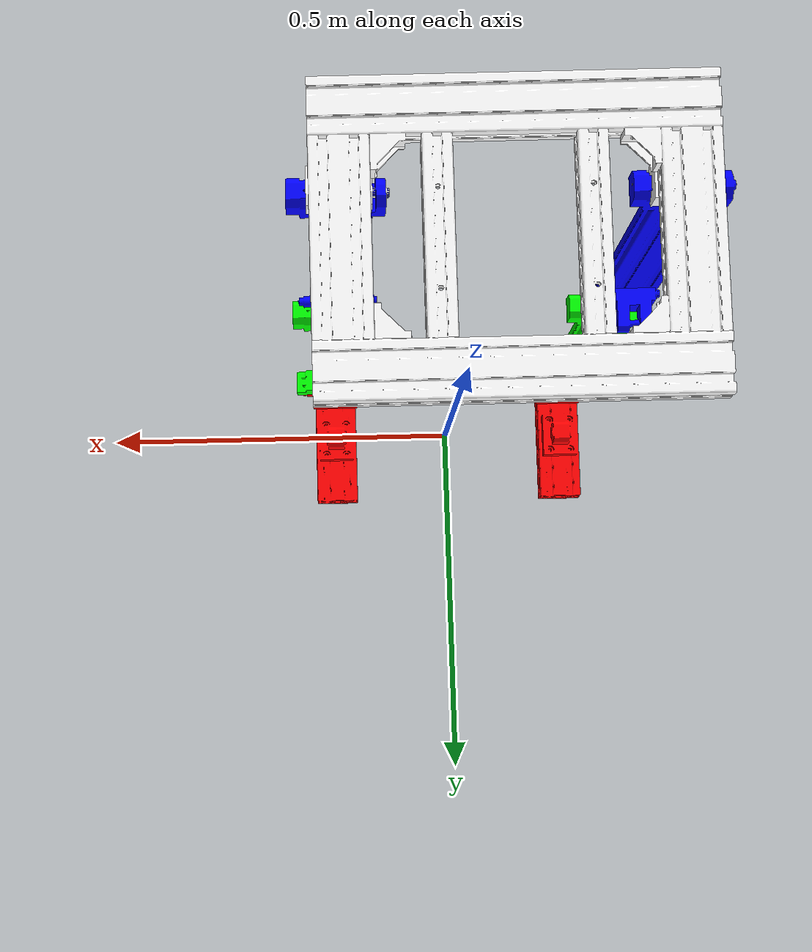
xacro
<?xml version="1.0" encoding="utf-8"?>
<robot
  name="hmr"
  xmlns:xacro="http://www.ros.org/wiki/xacro">

  <xacro:property name="PI" value="3.1415926535897931"/>
  <!-- Import Rviz colors -->
  <!-- Import all Gazebo-customization elements, including Gazebo colors -->
  <gazebo>
    <plugin name="gazebo_ros_control" filename="libgazebo_ros_control.so">
      <robotNamespace>/hmr</robotNamespace>
    </plugin>
  </gazebo>

  <link name="world"/>
  <joint name="fixed" type="fixed">
    <parent link="world"/>
    <child link="base"/>
  </joint>
  <link name="base">
  </link>
  <gazebo reference="base">
    <material>Gazebo/Blue</material>
  </gazebo>
  <!--BASE_LINK-->
  <link
    name="base_link">
    <inertial>
      <origin
        xyz="-0.000103296813793522 -0.0184749995894324 -0.00709986514009202"
        rpy="0 0 0" />
      <mass
        value="0.933836944447792" />
      <inertia
        ixx="0.00139201398308306"
        ixy="-2.82901658884336E-12"
        ixz="4.14929438991966E-12"
        iyy="0.00736197315629375"
        iyz="-8.0885885721078E-10"
        izz="0.00614175111526735" />
    </inertial>
    <visual>
      <origin
        xyz="0 0 0"
        rpy="0 0 0" />
      <geometry>
        <mesh
          filename="package://hmr/hmr_description/meshes/base_link.STL" />
      </geometry>
      <material name="white">
        <color rgba="1.0 1.0 1.0 1.0"/>
      </material>
    </visual>
    <collision>
      <origin
        xyz="0 0 0"
        rpy="0 0 0" />
      <geometry>
        <mesh
          filename="package://hmr/hmr_description/meshes/base_link.STL" />
      </geometry>
    </collision>
  </link>
  <gazebo reference="base_link">
    <material>Gazebo/Blue</material>
  </gazebo>
  <joint name="joint" type="fixed">
    <parent link="base"/>
    <child link="base_link"/>
    <origin xyz="0.0 0.0 1.12 " rpy="0.0 0.0 3.1416"/>
  </joint>
  <!--LLINK1-->
  <link
    name="llink1">
    <inertial>
      <origin
        xyz="0.0499999851262689 -0.248500614775013 5.33671345059814E-05"
        rpy="0 0 0" />
      <mass
        value="0.509664464543895" />
      <inertia
        ixx="0.00405279295169879"
        ixy="-5.17821013423379E-16"
        ixz="-1.86028405386162E-17"
        iyy="0.000257140430774596"
        iyz="2.20410095949559E-06"
        izz="0.0041884713527824" />
    </inertial>
    <visual>
      <origin
        xyz="0 0 0"
        rpy="0 0 0" />
      <geometry>
        <mesh
          filename="package://hmr/hmr_description/meshes/llink1.STL" />
      </geometry>
      <material name="blue">
        <color rgba="0.0 0.0 1.0 1.0"/>
      </material>
    </visual>
    <collision>
      <origin
        xyz="0 0 0"
        rpy="0 0 0" />
      <geometry>
        <mesh
          filename="package://hmr/hmr_description/meshes/llink1.STL" />
      </geometry>
    </collision>
  </link>
  <gazebo reference="llink1">
    <material>Gazebo/Blue</material>
  </gazebo>
  <joint
    name="ljoint1"
    type="revolute">
    <origin
      xyz="0.12 0.06 -0.06"
      rpy="1.5708 0 0" />
    <parent
      link="base_link" />
    <child
      link="llink1" />
    <axis
      xyz="1 0 0" />
    <limit lower="-0.6981" upper="0.5236" effort="2.0" velocity="0.2"/>
  </joint>
  <!--LLINK2-->
  <link
    name="llink2">
    <inertial>
      <origin
        xyz="0.0500545282509017 -0.234393633663144 0.00550026352716933"
        rpy="0 0 0" />
      <mass
        value="0.442265777754145" />
      <inertia
        ixx="0.0040117979862963"
        ixy="-5.09697896497051E-16"
        ixz="-2.77164071387431E-17"
        iyy="0.000241596436981563"
        iyz="-1.10278899850188E-06"
        izz="0.00416183117175302" />
    </inertial>
    <visual>
      <origin
        xyz="0 0 0"
        rpy="0 0 0" />
      <geometry>
        <mesh
          filename="package://hmr/hmr_description/meshes/llink2.STL" />
      </geometry>
      <material name="green">
        <color rgba="0.0 1.0 0.0 1.0"/>
      </material>
    </visual>
    <collision>
      <origin
        xyz="0 0 0"
        rpy="0 0 0" />
      <geometry>
        <mesh
          filename="package://hmr/hmr_description/meshes/llink2.STL" />
      </geometry>
    </collision>
  </link>
  <gazebo reference="llink2">
    <material>Gazebo/Blue</material>
  </gazebo>
  <joint
    name="ljoint2"
    type="revolute">
    <origin
      xyz="0 -0.5 0"
      rpy="0 0 0" />
    <parent
      link="llink1" />
    <child
      link="llink2" />
    <axis
      xyz="1 0 0" />
    <limit lower="0.0" upper="1.0472" effort="2.0" velocity="0.2"/>
  </joint>
  <!--LLINK3-->
  <link
    name="llink3">
    <inertial>
      <origin
        xyz="0.0501466994062446 -0.0351041894822217 0.0405185729509365"
        rpy="0 0 0" />
      <mass
        value="0.164387087553345" />
      <inertia
        ixx="0.000390399624612182"
        ixy="6.46553823154572E-18"
        ixz="7.16521493881578E-17"
        iyy="0.000442516689346383"
        iyz="-8.18654011913839E-11"
        izz="8.27552994226968E-05" />
    </inertial>
    <visual>
      <origin
        xyz="0 0 0"
        rpy="0 0 0" />
      <geometry>
        <mesh
          filename="package://hmr/hmr_description/meshes/llink3.STL" />
      </geometry>
      <material name="red">
        <color rgba="1.0 0.0 0.0 1.0"/>
      </material>
    </visual>
    <collision>
      <origin
        xyz="0 0 0"
        rpy="0 0 0" />
      <geometry>
        <mesh
          filename="package://hmr/hmr_description/meshes/llink3.STL" />
      </geometry>
    </collision>
  </link>
  <gazebo reference="llink3">
    <material>Gazebo/Blue</material>
  </gazebo>
  <joint
    name="ljoint3"
    type="revolute">
    <origin
      xyz="0 -0.5 0"
      rpy="0 0 0" />
    <parent
      link="llink2" />
    <child
      link="llink3" />
    <axis
      xyz="1 0 0" />
    <limit lower="-0.5236" upper="0.8727" effort="2.0" velocity="0.2"/>
  </joint>
  <!--RLINK1-->
  <link
    name="rlink1">
    <inertial>
      <origin
        xyz="-0.0500000148736693 -0.248500614774999 5.33671345059189E-05"
        rpy="0 0 0" />
      <mass
        value="0.509664464543895" />
      <inertia
        ixx="0.00405279295169879"
        ixy="-5.17781100332924E-16"
        ixz="-1.86069004433025E-17"
        iyy="0.000257140430774596"
        iyz="2.20410095949557E-06"
        izz="0.0041884713527824" />
    </inertial>
    <visual>
      <origin
        xyz="0 0 0"
        rpy="0 0 0" />
      <geometry>
        <mesh
          filename="package://hmr/hmr_description/meshes/rlink1.STL" />
      </geometry>
      <material name="blue">
        <color rgba="0.0 0.0 1.0 1.0"/>
      </material>
    </visual>
    <collision>
      <origin
        xyz="0 0 0"
        rpy="0 0 0" />
      <geometry>
        <mesh
          filename="package://hmr/hmr_description/meshes/rlink1.STL" />
      </geometry>
    </collision>
  </link>
  <gazebo reference="rlink1">
    <material>Gazebo/Blue</material>
  </gazebo>
  <joint
    name="rjoint1"
    type="revolute">
    <origin
      xyz="-0.12 0.06 -0.06"
      rpy="1.5708 0 0" />
    <parent
      link="base_link" />
    <child
      link="rlink1" />
    <axis
      xyz="1 0 0" />
    <limit lower="-0.6981" upper="0.5236" effort="2.0" velocity="0.2"/>
  </joint>
  <!--RLINK2-->
  <link
    name="rlink2">
    <inertial>
      <origin
        xyz="-0.049945471749016 -0.234393633663131 0.00550026352714499"
        rpy="0 0 0" />
      <mass
        value="0.442265777754145" />
      <inertia
        ixx="0.00401179798629629"
        ixy="-5.09803878440693E-16"
        ixz="-2.77168469663556E-17"
        iyy="0.000241596436981563"
        iyz="-1.10278899850179E-06"
        izz="0.00416183117175302" />
    </inertial>
    <visual>
      <origin
        xyz="0 0 0"
        rpy="0 0 0" />
      <geometry>
        <mesh
          filename="package://hmr/hmr_description/meshes/rlink2.STL" />
      </geometry>
      <material name="green">
        <color rgba="0.0 1.0 0.0 1.0"/>
      </material>
    </visual>
    <collision>
      <origin
        xyz="0 0 0"
        rpy="0 0 0" />
      <geometry>
        <mesh
          filename="package://hmr/hmr_description/meshes/rlink2.STL" />
      </geometry>
    </collision>
  </link>
  <gazebo reference="rlink2">
    <material>Gazebo/Blue</material>
  </gazebo>
  <joint
    name="rjoint2"
    type="revolute">
    <origin
      xyz="0 -0.5 0"
      rpy="0 0 0" />
    <parent
      link="rlink1" />
    <child
      link="rlink2" />
    <axis
      xyz="1 0 0" />
    <limit lower="0.0" upper="1.0472" effort="2.0" velocity="0.2"/>
  </joint>
  <!--RLINK3-->
  <link
    name="rlink3">
    <inertial>
      <origin
        xyz="-0.0498532993324217 -0.0351041894822506 0.040518572950845"
        rpy="0 0 0" />
      <mass
        value="0.164387087553345" />
      <inertia
        ixx="0.000390399624612182"
        ixy="6.46331811347987E-18"
        ixz="7.16490435411506E-17"
        iyy="0.000442516689346383"
        iyz="-8.18654011935542E-11"
        izz="8.27552994226968E-05" />
    </inertial>
    <visual>
      <origin
        xyz="0 0 0"
        rpy="0 0 0" />
      <geometry>
        <mesh
          filename="package://hmr/hmr_description/meshes/rlink3.STL" />
      </geometry>
      <material name="red">
        <color rgba="1.0 0.0 0.0 1.0"/>
      </material>
    </visual>
    <collision>
      <origin
        xyz="0 0 0"
        rpy="0 0 0" />
      <geometry>
        <mesh
          filename="package://hmr/hmr_description/meshes/rlink3.STL" />
      </geometry>
    </collision>
  </link>
  <gazebo reference="rlink3">
    <material>Gazebo/Blue</material>
  </gazebo>
  <joint
    name="rjoint3"
    type="revolute">
    <origin
      xyz="0 -0.5 0"
      rpy="0 0 0" />
    <parent
      link="rlink2" />
    <child
      link="rlink3" />
    <axis
      xyz="1 0 0" />
    <limit lower="-0.5236" upper="0.8727" effort="2.0" velocity="0.2"/>
  </joint>

  <transmission name="ltran1">
    <type>transmission_interface/SimpleTransmission</type>
    <joint name="ljoint1">
      <hardwareInterface>hardware_interface/EffortJointInterface</hardwareInterface>
    </joint>
    <actuator name="lmotor1">
      <mechanicalReduction>1.0</mechanicalReduction>
      <hardwareInterface>hardware_interface/PositionJointInterface</hardwareInterface>
    </actuator>
  </transmission>

  <transmission name="ltran2">
    <type>transmission_interface/SimpleTransmission</type>
    <joint name="ljoint2">
      <hardwareInterface>hardware_interface/EffortJointInterface</hardwareInterface>
    </joint>
    <actuator name="lmotor2">
      <mechanicalReduction>1.0</mechanicalReduction>
      <hardwareInterface>hardware_interface/PositionJointInterface</hardwareInterface>
    </actuator>
  </transmission>

  <transmission name="ltran3">
    <type>transmission_interface/SimpleTransmission</type>
    <joint name="ljoint3">
      <hardwareInterface>hardware_interface/EffortJointInterface</hardwareInterface>
    </joint>
    <actuator name="lmotor3">
      <mechanicalReduction>1.0</mechanicalReduction>
      <hardwareInterface>hardware_interface/PositionJointInterface</hardwareInterface>
    </actuator>
  </transmission>

  <transmission name="rtran1">
    <type>transmission_interface/SimpleTransmission</type>
    <joint name="rjoint1">
      <hardwareInterface>hardware_interface/EffortJointInterface</hardwareInterface>
    </joint>
    <actuator name="rmotor1">
      <mechanicalReduction>1.0</mechanicalReduction>
      <hardwareInterface>hardware_interface/PositionJointInterface</hardwareInterface>
    </actuator>
  </transmission>

  <transmission name="rtran2">
    <type>transmission_interface/SimpleTransmission</type>
    <joint name="rjoint2">
      <hardwareInterface>hardware_interface/EffortJointInterface</hardwareInterface>
    </joint>
    <actuator name="rmotor2">
      <mechanicalReduction>1.0</mechanicalReduction>
      <hardwareInterface>hardware_interface/PositionJointInterface</hardwareInterface>
    </actuator>
  </transmission>

  <transmission name="rtran3">
    <type>transmission_interface/SimpleTransmission</type>
    <joint name="rjoint3">
      <hardwareInterface>hardware_interface/EffortJointInterface</hardwareInterface>
    </joint>
    <actuator name="rmotor3">
      <mechanicalReduction>1.0</mechanicalReduction>
      <hardwareInterface>hardware_interface/PositionJointInterface</hardwareInterface>
    </actuator>
  </transmission>
</robot>
